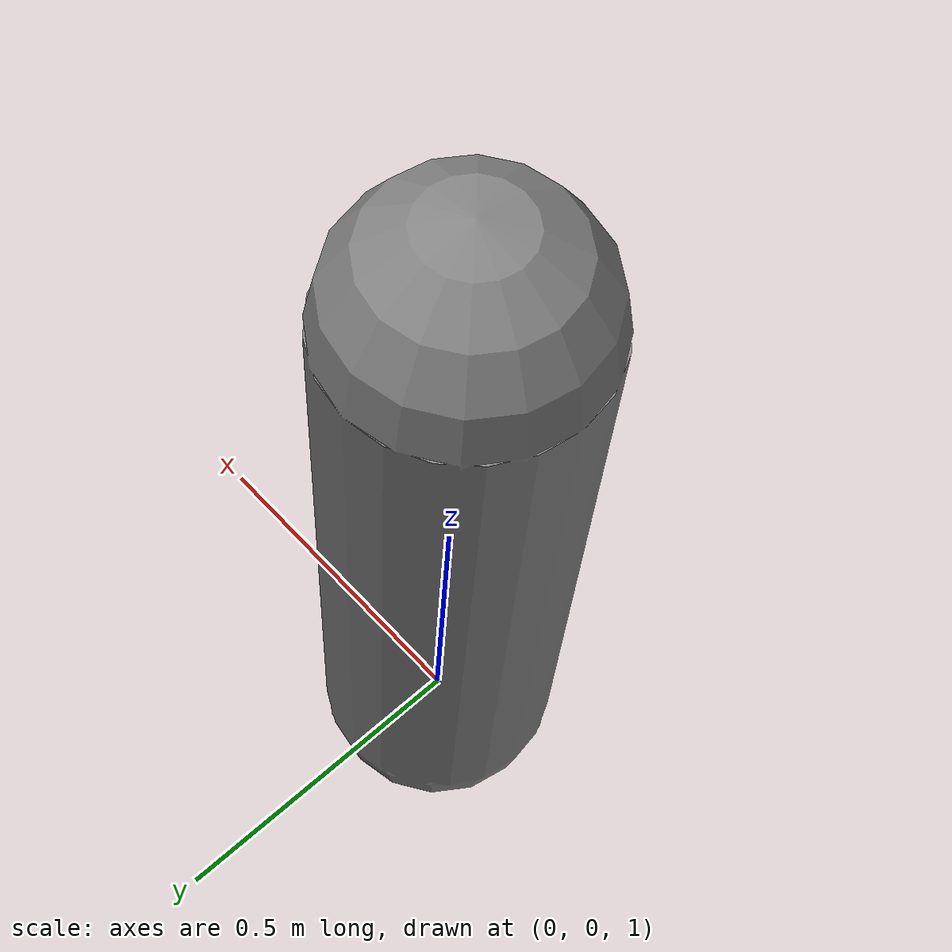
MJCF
<mujoco model="pole">
  <option timestep="0.02" iterations="1" ls_iterations="4">
    <flag contact="disable" eulerdamp="disable"/>
  </option>
  <compiler angle="radian"/>

  <worldbody>
    <light name="light" pos="0 0 6"/>
    <camera name="fixed" pos="0 -2.5 1.5" zaxis="0 -1 0"/>
    <body name="pole" pos="0 0 1">
        <joint name="hinge" type="hinge" axis="0 1 0" damping="5e-4" range="-1.8 1.8"/>
        <geom name="pole" type="capsule" size="0.18" fromto="0 0 0 0 0 1" mass="0.1"/>
    </body>
  </worldbody>

  <actuator>
    <position name="hinge" joint="hinge" kp="3" kv="0.3" ctrllimited="true" ctrlrange="-1.8 1.8" />
  </actuator>
</mujoco>
